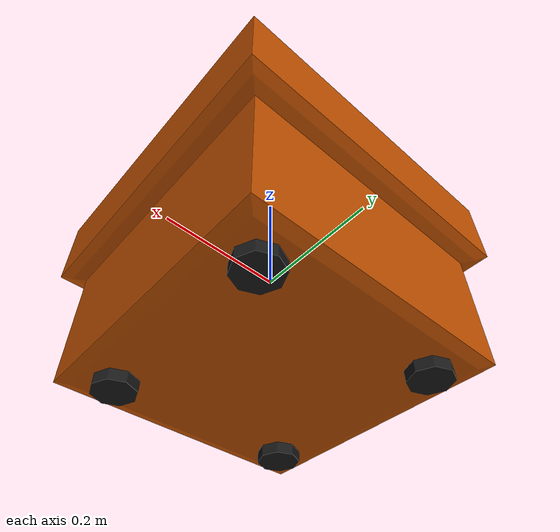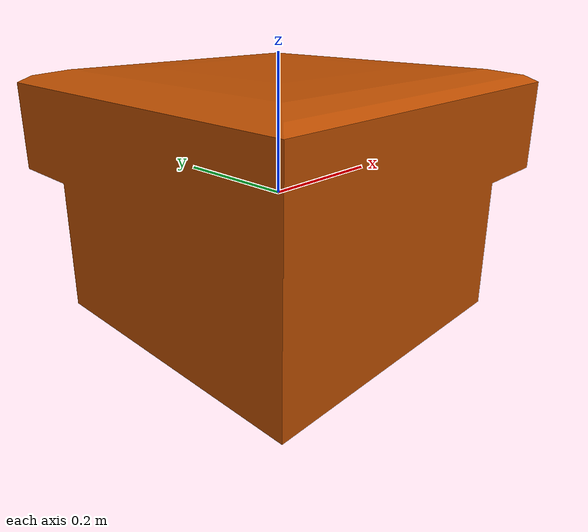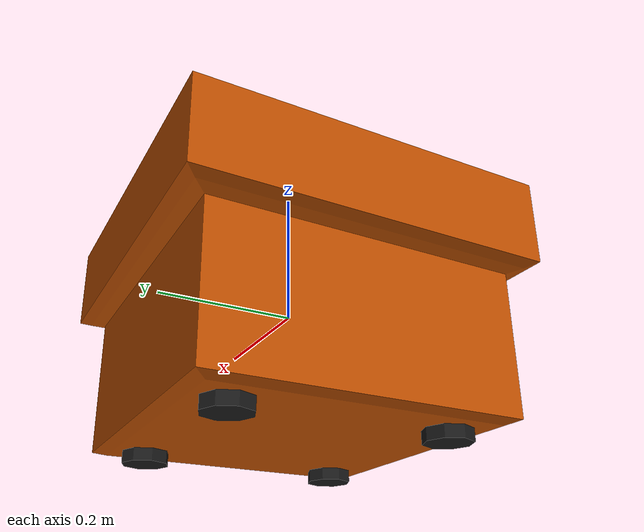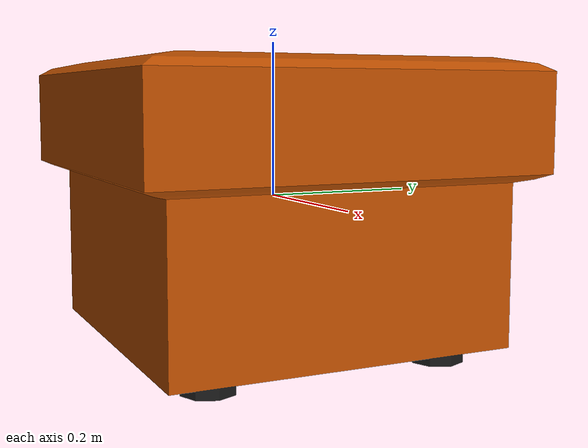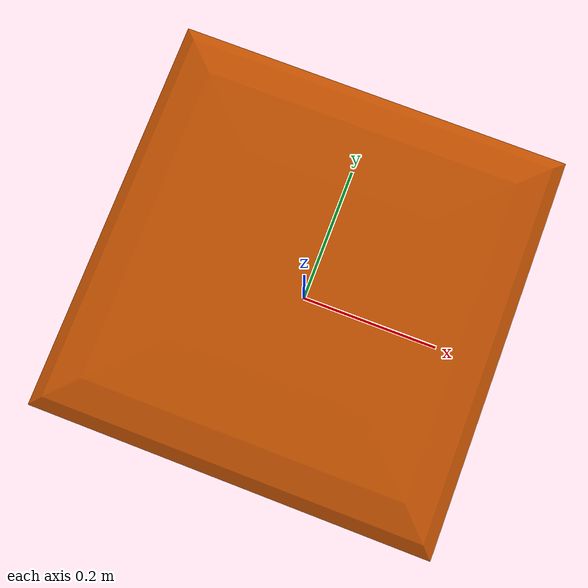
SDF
<?xml version='1.0'?>
<sdf version='1.5'>
    <model name="puffy">
        <pose>0 0 0 0 0 0</pose>
        <static>false</static>
        <link name='model_body'>
            <visual name="visual">
                <geometry>
                    <mesh>
                        <uri>model://robert_gazebo/meshes/puffy_visual_orange.dae</uri>
                        <scale>1 1 1</scale>
                    </mesh>
                </geometry>
            </visual>

            <collision name="collision">
                <geometry>
                    <mesh>
                        <uri>model://robert_gazebo/meshes/puffy_collision.dae</uri>
                        <scale>1 1 1</scale>
                    </mesh>
                </geometry>
            </collision>

            <inertial>
                <pose> 0 0 0 0 0 0</pose>
                <inertia>
                    <ixx>0.35</ixx>
                    <ixy>0</ixy>
                    <ixz>0</ixz>
                    <iyy>0.35</iyy>
                    <iyz>0</iyz>
                    <izz>0.43</izz>
                </inertia>
                <mass>10.0</mass>
            </inertial>
        </link>
    </model>
</sdf>
